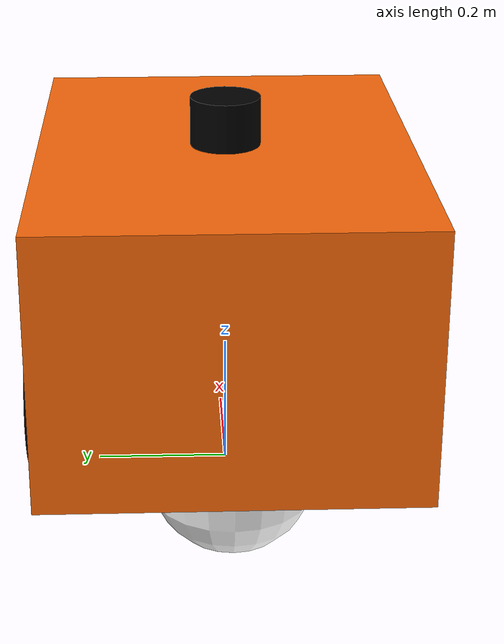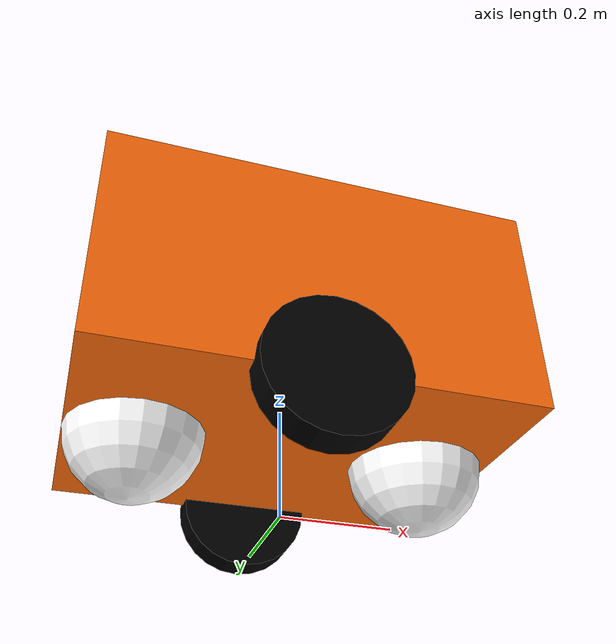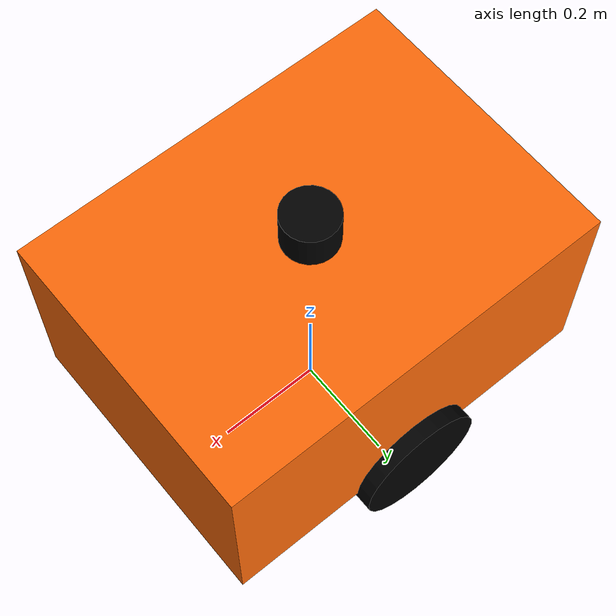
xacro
<?xml version="1.0"?>
<robot xmlns:xacro="http://www.ros.org/wiki/xacro" name="robot">
  <xacro:arg name="prefix" default=""/>
  <xacro:arg name="use_gazebo" default="false"/>
  <xacro:arg name="use_mock_hardware" default="false"/>
  <xacro:arg name="disable_commands" default="false"/>
  <!-- 默认值保持既有仿真几何；真机由 system_bringup 运行时覆盖。 -->
  <xacro:arg name="base_length" default="0.75"/>
  <xacro:arg name="base_width" default="0.55"/>
  <xacro:arg name="base_height" default="0.40"/>
  <xacro:arg name="base_link_height" default="0.32"/>
  <xacro:arg name="wheel_radius" default="0.12"/>
  <xacro:arg name="wheel_width" default="0.06"/>
  <xacro:arg name="wheel_separation" default="0.55"/>
  <xacro:arg name="lidar_x" default="0.0"/>
  <xacro:arg name="lidar_y" default="0.0"/>
  <xacro:arg name="lidar_z" default="0.236"/>
  <xacro:arg name="lidar_roll" default="0.0"/>
  <xacro:arg name="lidar_pitch" default="0.0"/>
  <xacro:arg name="lidar_yaw" default="0.0"/>
  <xacro:arg name="imu_x" default="0.0"/>
  <xacro:arg name="imu_y" default="0.0"/>
  <xacro:arg name="imu_z" default="0.236"/>
  <xacro:arg name="imu_roll" default="0.0"/>
  <xacro:arg name="imu_pitch" default="0.0"/>
  <xacro:arg name="imu_yaw" default="0.0"/>
  <xacro:arg name="lidar_scan_lines" default="16"/>
  <xacro:arg name="lidar_columns_per_scan" default="1800"/>
  <xacro:arg name="lidar_scan_rate_hz" default="10"/>
  <xacro:arg name="lidar_min_range" default="0.9"/>
  <xacro:arg name="lidar_max_range" default="100.0"/>
  <xacro:arg name="lidar_horizontal_start_angle" default="-3.14159"/>
  <xacro:arg name="lidar_horizontal_end_angle" default="3.14159"/>
  <xacro:arg name="imu_rate_hz" default="200"/>
  <!-- 仅 Gz 模式用：gz_ros2_control 读取的控制器 yaml 绝对路径 -->
  <xacro:arg name="gz_controllers_file" default=""/>

  <xacro:include filename="$(find robot_description)/urdf/robot_macro.urdf.xacro"/>
  <xacro:include filename="$(find robot_description)/urdf/robot.materials.xacro"/>
  <xacro:include filename="$(find robot_description)/ros2_control/robot.ros2_control.xacro"/>

  <xacro:robot_body prefix="$(arg prefix)"/>

  <xacro:robot_ros2_control
    name="RobotSystem"
    prefix="$(arg prefix)"
    use_gazebo="$(arg use_gazebo)"
    use_mock_hardware="$(arg use_mock_hardware)"
    disable_commands="$(arg disable_commands)"/>

  <xacro:if value="$(arg use_gazebo)">
    <xacro:include filename="$(find robot_description)/gazebo/robot.gazebo.xacro"/>
    <xacro:robot_gazebo
      prefix="$(arg prefix)"
      gz_controllers_file="$(arg gz_controllers_file)"
      lidar_scan_lines="$(arg lidar_scan_lines)"
      lidar_columns_per_scan="$(arg lidar_columns_per_scan)"
      lidar_scan_rate_hz="$(arg lidar_scan_rate_hz)"
      lidar_min_range="$(arg lidar_min_range)"
      lidar_max_range="$(arg lidar_max_range)"
      lidar_horizontal_start_angle="$(arg lidar_horizontal_start_angle)"
      lidar_horizontal_end_angle="$(arg lidar_horizontal_end_angle)"
      imu_rate_hz="$(arg imu_rate_hz)"/>
  </xacro:if>
</robot>

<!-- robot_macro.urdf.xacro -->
<robot xmlns:xacro="http://www.ros.org/wiki/xacro">

  <xacro:macro name="robot_body" params="prefix">

  <xacro:property name="PI" value="3.1415926535897931"/>

  <!-- 车体(X=长 Y=宽 Z=高) -->
  <xacro:property name="base_length" value="$(arg base_length)"/>
  <xacro:property name="base_width"  value="$(arg base_width)"/>
  <xacro:property name="base_height" value="$(arg base_height)"/>
  <xacro:property name="base_link_height" value="$(arg base_link_height)"/>
  <xacro:property name="base_mass"   value="30.0"/>

  <!-- 驱动轮 -->
  <xacro:property name="wheel_radius" value="$(arg wheel_radius)"/>
  <xacro:property name="wheel_width"  value="$(arg wheel_width)"/>
  <xacro:property name="wheel_separation" value="$(arg wheel_separation)"/>
  <xacro:property name="wheel_mass"   value="2.0"/>

  <!-- 球形万向轮：照示例，半径=驱动轮半径、与驱动轮同高 -->
  <xacro:property name="caster_radius" value="${wheel_radius}"/>
  <xacro:property name="caster_mass"   value="0.2"/>

  <!-- 顶部传感器(VLP-16 外形 puck) -->
  <xacro:property name="lidar_radius" value="0.0516"/>
  <xacro:property name="lidar_height" value="0.072"/>
  <xacro:property name="lidar_mass"   value="0.83"/>
  <xacro:property name="imu_mass"     value="0.01"/>

  <!-- 派生量 -->
  <xacro:property name="wheel_z"  value="${wheel_radius - base_link_height}"/>
  <xacro:property name="caster_x" value="${base_length/2 - caster_radius}"/>
  <xacro:property name="lidar_x" value="$(arg lidar_x)"/>
  <xacro:property name="lidar_y" value="$(arg lidar_y)"/>
  <xacro:property name="lidar_z" value="$(arg lidar_z)"/>
  <xacro:property name="lidar_roll" value="$(arg lidar_roll)"/>
  <xacro:property name="lidar_pitch" value="$(arg lidar_pitch)"/>
  <xacro:property name="lidar_yaw" value="$(arg lidar_yaw)"/>
  <xacro:property name="imu_x" value="$(arg imu_x)"/>
  <xacro:property name="imu_y" value="$(arg imu_y)"/>
  <xacro:property name="imu_z" value="$(arg imu_z)"/>
  <xacro:property name="imu_roll" value="$(arg imu_roll)"/>
  <xacro:property name="imu_pitch" value="$(arg imu_pitch)"/>
  <xacro:property name="imu_yaw" value="$(arg imu_yaw)"/>

  <!-- base_footprint：REP-105 地面投影根帧(无质量)。LIO-SAM baselinkFrame / Nav2 用。 -->
  <link name="${prefix}base_footprint"/>

  <joint name="${prefix}base_footprint_joint" type="fixed">
    <parent link="${prefix}base_footprint"/>
    <child  link="${prefix}base_link"/>
    <origin xyz="0 0 ${base_link_height}" rpy="0 0 0"/>
  </joint>

  <!-- 车体 base_link(base_footprint 的固定子) -->
  <link name="${prefix}base_link">
    <collision>
      <origin xyz="0 0 0" rpy="0 0 0"/>
      <geometry><box size="${base_length} ${base_width} ${base_height}"/></geometry>
    </collision>
    <visual>
      <origin xyz="0 0 0" rpy="0 0 0"/>
      <geometry><box size="${base_length} ${base_width} ${base_height}"/></geometry>
      <material name="orange"/>
    </visual>
    <inertial>
      <origin xyz="0 0 0" rpy="0 0 0"/>
      <mass value="${base_mass}"/>
      <inertia
        ixx="${base_mass / 12.0 * (base_width*base_width + base_height*base_height)}" ixy="0.0" ixz="0.0"
        iyy="${base_mass / 12.0 * (base_length*base_length + base_height*base_height)}" iyz="0.0"
        izz="${base_mass / 12.0 * (base_length*base_length + base_width*base_width)}"/>
    </inertial>
  </link>

  <!-- 左驱动轮 -->
  <joint name="${prefix}left_wheel_joint" type="continuous">
    <parent link="${prefix}base_link"/>
    <child  link="${prefix}left_wheel"/>
    <origin xyz="0 ${wheel_separation/2} ${wheel_z}" rpy="0 0 0"/>
    <axis xyz="0 1 0"/>
    <dynamics damping="0.2"/>
    <limit effort="100" velocity="20.0"/>
  </joint>

  <link name="${prefix}left_wheel">
    <collision>
      <origin xyz="0 0 0" rpy="${PI/2} 0 0"/>
      <geometry><cylinder length="${wheel_width}" radius="${wheel_radius}"/></geometry>
    </collision>
    <visual>
      <origin xyz="0 0 0" rpy="${PI/2} 0 0"/>
      <geometry><cylinder length="${wheel_width}" radius="${wheel_radius}"/></geometry>
      <material name="black"/>
    </visual>
    <inertial>
      <origin xyz="0 0 0" rpy="${PI/2} 0 0"/>
      <mass value="${wheel_mass}"/>
      <inertia
        ixx="${wheel_mass / 12.0 * (3*wheel_radius*wheel_radius + wheel_width*wheel_width)}" ixy="0.0" ixz="0.0"
        iyy="${wheel_mass / 12.0 * (3*wheel_radius*wheel_radius + wheel_width*wheel_width)}" iyz="0.0"
        izz="${wheel_mass / 2.0 * wheel_radius*wheel_radius}"/>
    </inertial>
  </link>

  <!-- 右驱动轮 -->
  <joint name="${prefix}right_wheel_joint" type="continuous">
    <parent link="${prefix}base_link"/>
    <child  link="${prefix}right_wheel"/>
    <origin xyz="0 ${-wheel_separation/2} ${wheel_z}" rpy="0 0 0"/>
    <axis xyz="0 1 0"/>
    <dynamics damping="0.2"/>
    <limit effort="100" velocity="20.0"/>
  </joint>

  <link name="${prefix}right_wheel">
    <collision>
      <origin xyz="0 0 0" rpy="${PI/2} 0 0"/>
      <geometry><cylinder length="${wheel_width}" radius="${wheel_radius}"/></geometry>
    </collision>
    <visual>
      <origin xyz="0 0 0" rpy="${PI/2} 0 0"/>
      <geometry><cylinder length="${wheel_width}" radius="${wheel_radius}"/></geometry>
      <material name="black"/>
    </visual>
    <inertial>
      <origin xyz="0 0 0" rpy="${PI/2} 0 0"/>
      <mass value="${wheel_mass}"/>
      <inertia
        ixx="${wheel_mass / 12.0 * (3*wheel_radius*wheel_radius + wheel_width*wheel_width)}" ixy="0.0" ixz="0.0"
        iyy="${wheel_mass / 12.0 * (3*wheel_radius*wheel_radius + wheel_width*wheel_width)}" iyz="0.0"
        izz="${wheel_mass / 2.0 * wheel_radius*wheel_radius}"/>
    </inertial>
  </link>

  <!-- 前万向轮(半径=驱动轮、与驱动轮同高，照示例) -->
  <joint name="${prefix}caster_frontal_wheel_joint" type="fixed">
    <parent link="${prefix}base_link"/>
    <child  link="${prefix}caster_frontal_wheel"/>
    <origin xyz="${caster_x} 0 ${wheel_z}" rpy="0 0 0"/>
  </joint>

  <link name="${prefix}caster_frontal_wheel">
    <collision>
      <origin xyz="0 0 0" rpy="0 0 0"/>
      <geometry><sphere radius="${caster_radius}"/></geometry>
    </collision>
    <visual>
      <origin xyz="0 0 0" rpy="0 0 0"/>
      <geometry><sphere radius="${caster_radius}"/></geometry>
      <material name="white"/>
    </visual>
    <inertial>
      <origin xyz="0 0 0" rpy="0 0 0"/>
      <mass value="${caster_mass}"/>
      <inertia
        ixx="${caster_mass * 0.4 * (caster_radius * caster_radius)}" ixy="0.0" ixz="0.0"
        iyy="${caster_mass * 0.4 * (caster_radius * caster_radius)}" iyz="0.0"
        izz="${caster_mass * 0.4 * (caster_radius * caster_radius)}"/>
    </inertial>
  </link>

  <!-- 后万向轮 -->
  <joint name="${prefix}caster_rear_wheel_joint" type="fixed">
    <parent link="${prefix}base_link"/>
    <child  link="${prefix}caster_rear_wheel"/>
    <origin xyz="${-caster_x} 0 ${wheel_z}" rpy="0 0 0"/>
  </joint>

  <link name="${prefix}caster_rear_wheel">
    <collision>
      <origin xyz="0 0 0" rpy="0 0 0"/>
      <geometry><sphere radius="${caster_radius}"/></geometry>
    </collision>
    <visual>
      <origin xyz="0 0 0" rpy="0 0 0"/>
      <geometry><sphere radius="${caster_radius}"/></geometry>
      <material name="white"/>
    </visual>
    <inertial>
      <origin xyz="0 0 0" rpy="0 0 0"/>
      <mass value="${caster_mass}"/>
      <inertia
        ixx="${caster_mass * 0.4 * (caster_radius * caster_radius)}" ixy="0.0" ixz="0.0"
        iyy="${caster_mass * 0.4 * (caster_radius * caster_radius)}" iyz="0.0"
        izz="${caster_mass * 0.4 * (caster_radius * caster_radius)}"/>
    </inertial>
  </link>

  <!-- 雷达挂载帧 velodyne：Phase 3 在此挂 Gz gpu_lidar。 -->
  <joint name="${prefix}velodyne_joint" type="fixed">
    <parent link="${prefix}base_link"/>
    <child  link="${prefix}velodyne"/>
    <origin xyz="${lidar_x} ${lidar_y} ${lidar_z}" rpy="${lidar_roll} ${lidar_pitch} ${lidar_yaw}"/>
  </joint>

  <link name="${prefix}velodyne">
    <collision>
      <origin xyz="0 0 0" rpy="0 0 0"/>
      <geometry><cylinder length="${lidar_height}" radius="${lidar_radius}"/></geometry>
    </collision>
    <visual>
      <origin xyz="0 0 0" rpy="0 0 0"/>
      <geometry><cylinder length="${lidar_height}" radius="${lidar_radius}"/></geometry>
      <material name="black"/>
    </visual>
    <inertial>
      <origin xyz="0 0 0" rpy="0 0 0"/>
      <mass value="${lidar_mass}"/>
      <inertia
        ixx="${lidar_mass / 12.0 * (3*lidar_radius*lidar_radius + lidar_height*lidar_height)}" ixy="0.0" ixz="0.0"
        iyy="${lidar_mass / 12.0 * (3*lidar_radius*lidar_radius + lidar_height*lidar_height)}" iyz="0.0"
        izz="${lidar_mass / 2.0 * lidar_radius*lidar_radius}"/>
    </inertial>
  </link>

  <!-- IMU 挂载帧 imu_link：Phase 3 在此挂 Gz imu。 -->
  <joint name="${prefix}imu_joint" type="fixed">
    <parent link="${prefix}base_link"/>
    <child  link="${prefix}imu_link"/>
    <origin xyz="${imu_x} ${imu_y} ${imu_z}" rpy="${imu_roll} ${imu_pitch} ${imu_yaw}"/>
  </joint>

  <link name="${prefix}imu_link">
    <inertial>
      <origin xyz="0 0 0" rpy="0 0 0"/>
      <mass value="${imu_mass}"/>
      <inertia ixx="1e-6" ixy="0.0" ixz="0.0" iyy="1e-6" iyz="0.0" izz="1e-6"/>
    </inertial>
  </link>

  </xacro:macro>
</robot>

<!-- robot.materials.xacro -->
<robot xmlns:xacro="http://www.ros.org/wiki/xacro">
  <material name="black"><color rgba="0.0 0.0 0.0 1.0"/></material>
  <material name="orange"><color rgba="1.0 0.42 0.04 1.0"/></material>
  <material name="white"><color rgba="1.0 1.0 1.0 1.0"/></material>
</robot>
